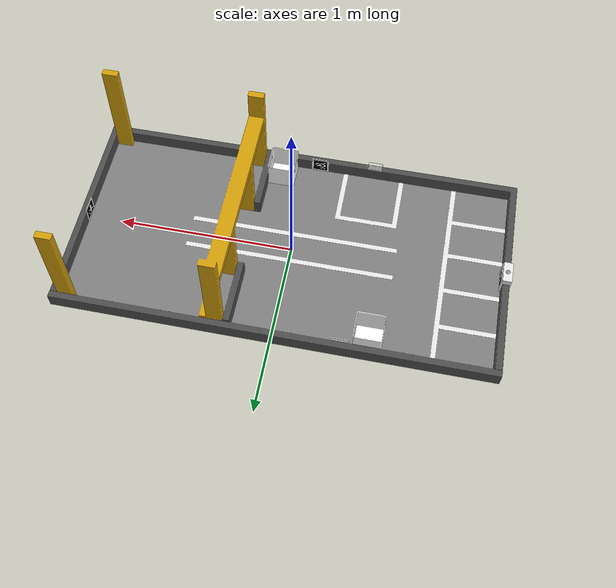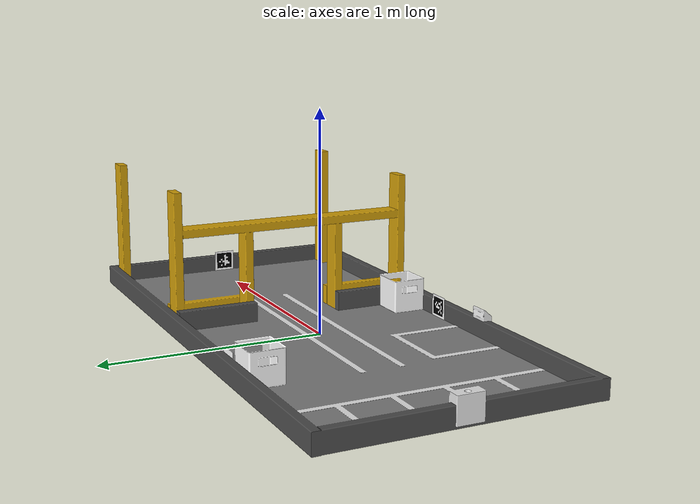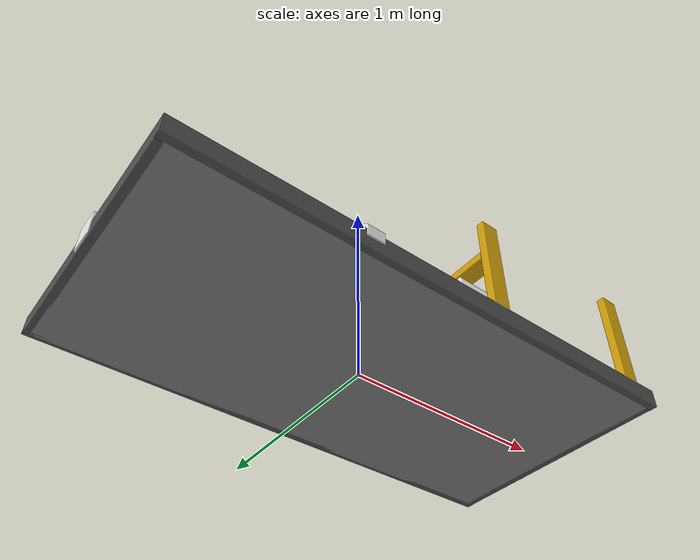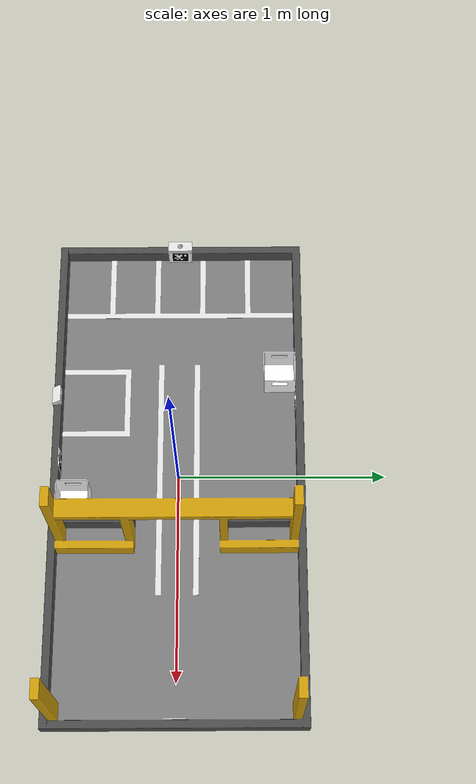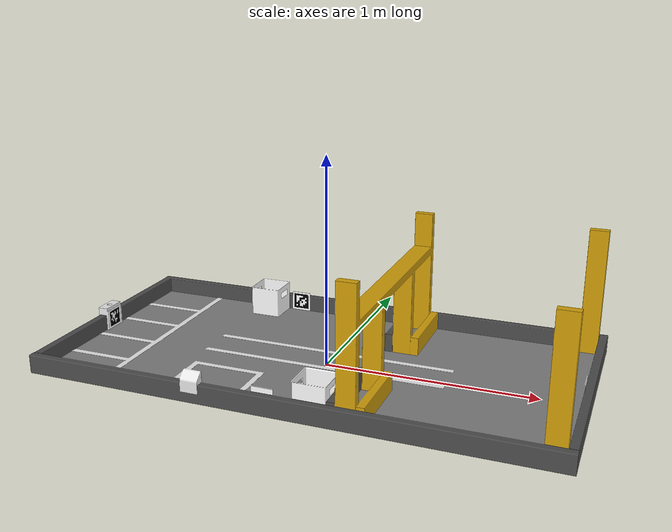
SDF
<?xml version="1.0"?>
<sdf version="1.5">
  <model name="field">

    <static>true</static>

    <link name="link">

      <collision name="collision">
        <geometry>
          <mesh>
            <uri>meshes/field_tapeless.dae</uri>
          </mesh>
        </geometry>
      </collision>

      <visual name="visual">
        <geometry>
          <mesh>
            <uri>meshes/field.dae</uri>
          </mesh>
        </geometry>
      </visual>

    </link>
  </model>
</sdf>
